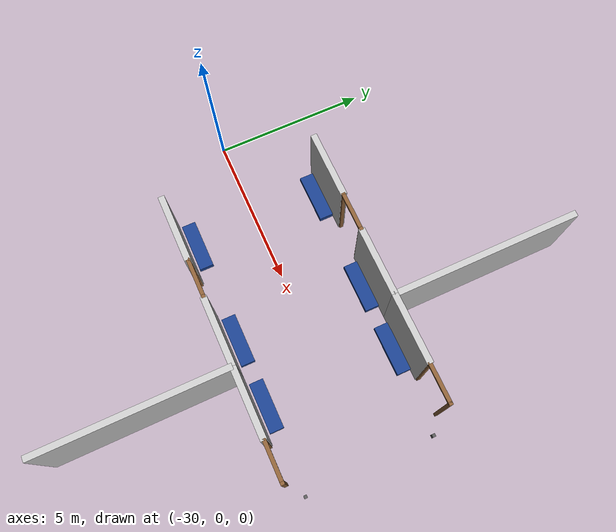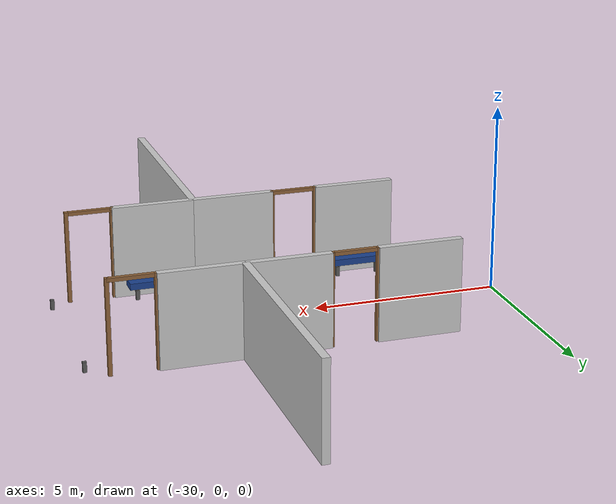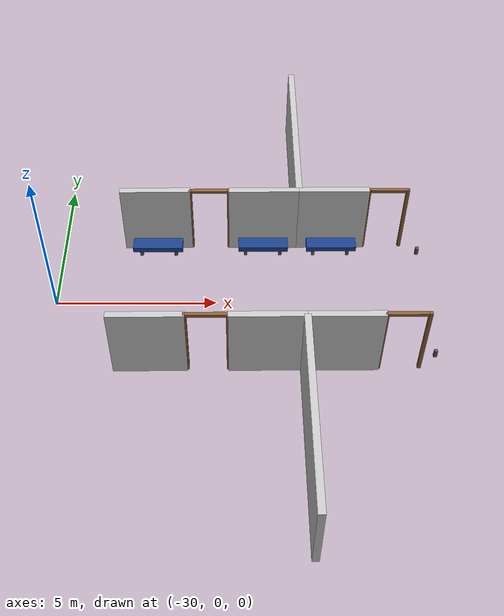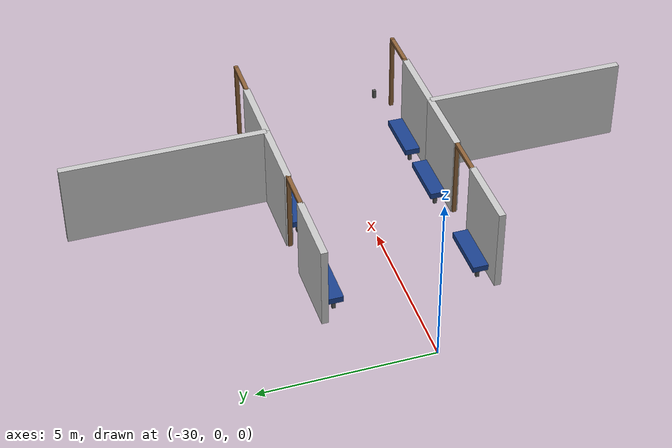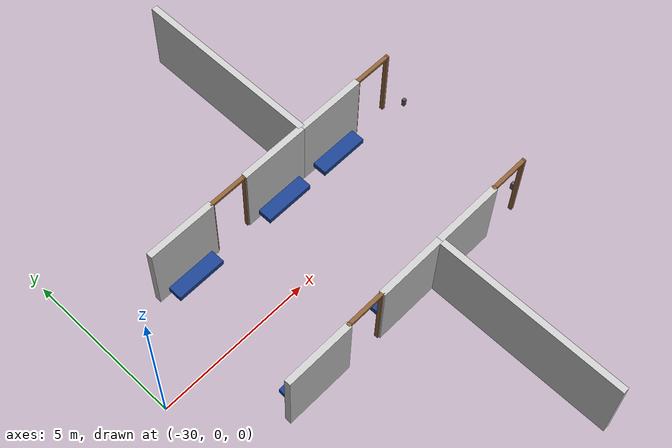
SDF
<sdf version="1.9">
 <world name="hospital_easy">
  <model name="north_partition_0">
   <static>true</static>
   <pose>-22.400 5.500 1.250 0 0 0</pose>
   <link name="link">
    <collision name="collision"><geometry><box><size>0.200 6.000 2.500</size></box></geometry></collision>
    <visual name="visual">
     <geometry><box><size>0.200 6.000 2.500</size></box></geometry>
     <material><ambient>0.78 0.78 0.78 1.0</ambient><diffuse>0.78 0.78 0.78 1.0</diffuse></material>
    </visual>
   </link>
  </model>
  <model name="south_partition_0">
   <static>true</static>
   <pose>-22.400 -5.500 1.250 0 0 0</pose>
   <link name="link">
    <collision name="collision"><geometry><box><size>0.200 6.000 2.500</size></box></geometry></collision>
    <visual name="visual">
     <geometry><box><size>0.200 6.000 2.500</size></box></geometry>
     <material><ambient>0.78 0.78 0.78 1.0</ambient><diffuse>0.78 0.78 0.78 1.0</diffuse></material>
    </visual>
   </link>
  </model>
  <model name="north_room_01_wall_left">
   <static>true</static>
   <pose>-26.900 2.500 1.250 0 0 0</pose>
   <link name="link">
    <collision name="collision"><geometry><box><size>2.200 0.200 2.500</size></box></geometry></collision>
    <visual name="visual">
     <geometry><box><size>2.200 0.200 2.500</size></box></geometry>
     <material><ambient>0.78 0.78 0.78 1.0</ambient><diffuse>0.78 0.78 0.78 1.0</diffuse></material>
    </visual>
   </link>
  </model>
  <model name="north_room_01_wall_right">
   <static>true</static>
   <pose>-23.500 2.500 1.250 0 0 0</pose>
   <link name="link">
    <collision name="collision"><geometry><box><size>2.200 0.200 2.500</size></box></geometry></collision>
    <visual name="visual">
     <geometry><box><size>2.200 0.200 2.500</size></box></geometry>
     <material><ambient>0.78 0.78 0.78 1.0</ambient><diffuse>0.78 0.78 0.78 1.0</diffuse></material>
    </visual>
   </link>
  </model>
  <model name="north_room_02_wall_left">
   <static>true</static>
   <pose>-21.300 2.500 1.250 0 0 0</pose>
   <link name="link">
    <collision name="collision"><geometry><box><size>2.200 0.200 2.500</size></box></geometry></collision>
    <visual name="visual">
     <geometry><box><size>2.200 0.200 2.500</size></box></geometry>
     <material><ambient>0.78 0.78 0.78 1.0</ambient><diffuse>0.78 0.78 0.78 1.0</diffuse></material>
    </visual>
   </link>
  </model>
  <model name="south_room_01_wall_left">
   <static>true</static>
   <pose>-26.900 -2.500 1.250 0 0 0</pose>
   <link name="link">
    <collision name="collision"><geometry><box><size>2.200 0.200 2.500</size></box></geometry></collision>
    <visual name="visual">
     <geometry><box><size>2.200 0.200 2.500</size></box></geometry>
     <material><ambient>0.78 0.78 0.78 1.0</ambient><diffuse>0.78 0.78 0.78 1.0</diffuse></material>
    </visual>
   </link>
  </model>
  <model name="south_room_01_wall_right">
   <static>true</static>
   <pose>-23.500 -2.500 1.250 0 0 0</pose>
   <link name="link">
    <collision name="collision"><geometry><box><size>2.200 0.200 2.500</size></box></geometry></collision>
    <visual name="visual">
     <geometry><box><size>2.200 0.200 2.500</size></box></geometry>
     <material><ambient>0.78 0.78 0.78 1.0</ambient><diffuse>0.78 0.78 0.78 1.0</diffuse></material>
    </visual>
   </link>
  </model>
  <model name="south_room_02_wall_left">
   <static>true</static>
   <pose>-21.300 -2.500 1.250 0 0 0</pose>
   <link name="link">
    <collision name="collision"><geometry><box><size>2.200 0.200 2.500</size></box></geometry></collision>
    <visual name="visual">
     <geometry><box><size>2.200 0.200 2.500</size></box></geometry>
     <material><ambient>0.78 0.78 0.78 1.0</ambient><diffuse>0.78 0.78 0.78 1.0</diffuse></material>
    </visual>
   </link>
  </model>
  <model name="north_door_01_left">
   <static>true</static>
   <pose>-25.800 2.490 1.250 0 0 0</pose>
   <link name="link">
    <collision name="collision"><geometry><box><size>0.100 0.120 2.500</size></box></geometry></collision>
    <visual name="visual">
     <geometry><box><size>0.100 0.120 2.500</size></box></geometry>
     <material><ambient>0.55 0.38 0.22 1.0</ambient><diffuse>0.55 0.38 0.22 1.0</diffuse></material>
    </visual>
   </link>
  </model>
  <model name="north_door_01_right">
   <static>true</static>
   <pose>-24.600 2.490 1.250 0 0 0</pose>
   <link name="link">
    <collision name="collision"><geometry><box><size>0.100 0.120 2.500</size></box></geometry></collision>
    <visual name="visual">
     <geometry><box><size>0.100 0.120 2.500</size></box></geometry>
     <material><ambient>0.55 0.38 0.22 1.0</ambient><diffuse>0.55 0.38 0.22 1.0</diffuse></material>
    </visual>
   </link>
  </model>
  <model name="north_door_01_top">
   <static>true</static>
   <pose>-25.200 2.490 2.450 0 0 0</pose>
   <link name="link">
    <collision name="collision"><geometry><box><size>1.200 0.120 0.100</size></box></geometry></collision>
    <visual name="visual">
     <geometry><box><size>1.200 0.120 0.100</size></box></geometry>
     <material><ambient>0.55 0.38 0.22 1.0</ambient><diffuse>0.55 0.38 0.22 1.0</diffuse></material>
    </visual>
   </link>
  </model>
  <model name="north_door_02_left">
   <static>true</static>
   <pose>-20.200 2.490 1.250 0 0 0</pose>
   <link name="link">
    <collision name="collision"><geometry><box><size>0.100 0.120 2.500</size></box></geometry></collision>
    <visual name="visual">
     <geometry><box><size>0.100 0.120 2.500</size></box></geometry>
     <material><ambient>0.55 0.38 0.22 1.0</ambient><diffuse>0.55 0.38 0.22 1.0</diffuse></material>
    </visual>
   </link>
  </model>
  <model name="north_door_02_right">
   <static>true</static>
   <pose>-19.000 2.490 1.250 0 0 0</pose>
   <link name="link">
    <collision name="collision"><geometry><box><size>0.100 0.120 2.500</size></box></geometry></collision>
    <visual name="visual">
     <geometry><box><size>0.100 0.120 2.500</size></box></geometry>
     <material><ambient>0.55 0.38 0.22 1.0</ambient><diffuse>0.55 0.38 0.22 1.0</diffuse></material>
    </visual>
   </link>
  </model>
  <model name="north_door_02_top">
   <static>true</static>
   <pose>-19.600 2.490 2.450 0 0 0</pose>
   <link name="link">
    <collision name="collision"><geometry><box><size>1.200 0.120 0.100</size></box></geometry></collision>
    <visual name="visual">
     <geometry><box><size>1.200 0.120 0.100</size></box></geometry>
     <material><ambient>0.55 0.38 0.22 1.0</ambient><diffuse>0.55 0.38 0.22 1.0</diffuse></material>
    </visual>
   </link>
  </model>
  <model name="south_door_01_left">
   <static>true</static>
   <pose>-25.800 -2.490 1.250 0 0 0</pose>
   <link name="link">
    <collision name="collision"><geometry><box><size>0.100 0.120 2.500</size></box></geometry></collision>
    <visual name="visual">
     <geometry><box><size>0.100 0.120 2.500</size></box></geometry>
     <material><ambient>0.55 0.38 0.22 1.0</ambient><diffuse>0.55 0.38 0.22 1.0</diffuse></material>
    </visual>
   </link>
  </model>
  <model name="south_door_01_right">
   <static>true</static>
   <pose>-24.600 -2.490 1.250 0 0 0</pose>
   <link name="link">
    <collision name="collision"><geometry><box><size>0.100 0.120 2.500</size></box></geometry></collision>
    <visual name="visual">
     <geometry><box><size>0.100 0.120 2.500</size></box></geometry>
     <material><ambient>0.55 0.38 0.22 1.0</ambient><diffuse>0.55 0.38 0.22 1.0</diffuse></material>
    </visual>
   </link>
  </model>
  <model name="south_door_01_top">
   <static>true</static>
   <pose>-25.200 -2.490 2.450 0 0 0</pose>
   <link name="link">
    <collision name="collision"><geometry><box><size>1.200 0.120 0.100</size></box></geometry></collision>
    <visual name="visual">
     <geometry><box><size>1.200 0.120 0.100</size></box></geometry>
     <material><ambient>0.55 0.38 0.22 1.0</ambient><diffuse>0.55 0.38 0.22 1.0</diffuse></material>
    </visual>
   </link>
  </model>
  <model name="south_door_02_left">
   <static>true</static>
   <pose>-20.200 -2.490 1.250 0 0 0</pose>
   <link name="link">
    <collision name="collision"><geometry><box><size>0.100 0.120 2.500</size></box></geometry></collision>
    <visual name="visual">
     <geometry><box><size>0.100 0.120 2.500</size></box></geometry>
     <material><ambient>0.55 0.38 0.22 1.0</ambient><diffuse>0.55 0.38 0.22 1.0</diffuse></material>
    </visual>
   </link>
  </model>
  <model name="south_door_02_right">
   <static>true</static>
   <pose>-19.000 -2.490 1.250 0 0 0</pose>
   <link name="link">
    <collision name="collision"><geometry><box><size>0.100 0.120 2.500</size></box></geometry></collision>
    <visual name="visual">
     <geometry><box><size>0.100 0.120 2.500</size></box></geometry>
     <material><ambient>0.55 0.38 0.22 1.0</ambient><diffuse>0.55 0.38 0.22 1.0</diffuse></material>
    </visual>
   </link>
  </model>
  <model name="south_door_02_top">
   <static>true</static>
   <pose>-19.600 -2.490 2.450 0 0 0</pose>
   <link name="link">
    <collision name="collision"><geometry><box><size>1.200 0.120 0.100</size></box></geometry></collision>
    <visual name="visual">
     <geometry><box><size>1.200 0.120 0.100</size></box></geometry>
     <material><ambient>0.55 0.38 0.22 1.0</ambient><diffuse>0.55 0.38 0.22 1.0</diffuse></material>
    </visual>
   </link>
  </model>
  <model name="north_room_01_bench_left_seat">
   <static>true</static>
   <pose>-26.900 2.100 0.450 0 0 0</pose>
   <link name="link">
    <collision name="collision"><geometry><box><size>1.600 0.450 0.180</size></box></geometry></collision>
    <visual name="visual">
     <geometry><box><size>1.600 0.450 0.180</size></box></geometry>
     <material><ambient>0.10 0.25 0.55 1.0</ambient><diffuse>0.10 0.25 0.55 1.0</diffuse></material>
    </visual>
   </link>
  </model>
  <model name="north_room_01_bench_left_leg_left">
   <static>true</static>
   <pose>-27.460 2.100 0.135 0 0 0</pose>
   <link name="link">
    <collision name="collision"><geometry><box><size>0.100 0.100 0.270</size></box></geometry></collision>
    <visual name="visual">
     <geometry><box><size>0.100 0.100 0.270</size></box></geometry>
     <material><ambient>0.35 0.35 0.35 1.0</ambient><diffuse>0.35 0.35 0.35 1.0</diffuse></material>
    </visual>
   </link>
  </model>
  <model name="north_room_01_bench_left_leg_right">
   <static>true</static>
   <pose>-26.340 2.100 0.135 0 0 0</pose>
   <link name="link">
    <collision name="collision"><geometry><box><size>0.100 0.100 0.270</size></box></geometry></collision>
    <visual name="visual">
     <geometry><box><size>0.100 0.100 0.270</size></box></geometry>
     <material><ambient>0.35 0.35 0.35 1.0</ambient><diffuse>0.35 0.35 0.35 1.0</diffuse></material>
    </visual>
   </link>
  </model>
  <model name="north_room_01_bench_right_seat">
   <static>true</static>
   <pose>-23.500 2.100 0.450 0 0 0</pose>
   <link name="link">
    <collision name="collision"><geometry><box><size>1.600 0.450 0.180</size></box></geometry></collision>
    <visual name="visual">
     <geometry><box><size>1.600 0.450 0.180</size></box></geometry>
     <material><ambient>0.10 0.25 0.55 1.0</ambient><diffuse>0.10 0.25 0.55 1.0</diffuse></material>
    </visual>
   </link>
  </model>
  <model name="north_room_01_bench_right_leg_left">
   <static>true</static>
   <pose>-24.060 2.100 0.135 0 0 0</pose>
   <link name="link">
    <collision name="collision"><geometry><box><size>0.100 0.100 0.270</size></box></geometry></collision>
    <visual name="visual">
     <geometry><box><size>0.100 0.100 0.270</size></box></geometry>
     <material><ambient>0.35 0.35 0.35 1.0</ambient><diffuse>0.35 0.35 0.35 1.0</diffuse></material>
    </visual>
   </link>
  </model>
  <model name="north_room_01_bench_right_leg_right">
   <static>true</static>
   <pose>-22.940 2.100 0.135 0 0 0</pose>
   <link name="link">
    <collision name="collision"><geometry><box><size>0.100 0.100 0.270</size></box></geometry></collision>
    <visual name="visual">
     <geometry><box><size>0.100 0.100 0.270</size></box></geometry>
     <material><ambient>0.35 0.35 0.35 1.0</ambient><diffuse>0.35 0.35 0.35 1.0</diffuse></material>
    </visual>
   </link>
  </model>
  <model name="north_room_02_bench_left_seat">
   <static>true</static>
   <pose>-21.300 2.100 0.450 0 0 0</pose>
   <link name="link">
    <collision name="collision"><geometry><box><size>1.600 0.450 0.180</size></box></geometry></collision>
    <visual name="visual">
     <geometry><box><size>1.600 0.450 0.180</size></box></geometry>
     <material><ambient>0.10 0.25 0.55 1.0</ambient><diffuse>0.10 0.25 0.55 1.0</diffuse></material>
    </visual>
   </link>
  </model>
  <model name="north_room_02_bench_left_leg_left">
   <static>true</static>
   <pose>-21.860 2.100 0.135 0 0 0</pose>
   <link name="link">
    <collision name="collision"><geometry><box><size>0.100 0.100 0.270</size></box></geometry></collision>
    <visual name="visual">
     <geometry><box><size>0.100 0.100 0.270</size></box></geometry>
     <material><ambient>0.35 0.35 0.35 1.0</ambient><diffuse>0.35 0.35 0.35 1.0</diffuse></material>
    </visual>
   </link>
  </model>
  <model name="north_room_02_bench_left_leg_right">
   <static>true</static>
   <pose>-20.740 2.100 0.135 0 0 0</pose>
   <link name="link">
    <collision name="collision"><geometry><box><size>0.100 0.100 0.270</size></box></geometry></collision>
    <visual name="visual">
     <geometry><box><size>0.100 0.100 0.270</size></box></geometry>
     <material><ambient>0.35 0.35 0.35 1.0</ambient><diffuse>0.35 0.35 0.35 1.0</diffuse></material>
    </visual>
   </link>
  </model>
  <model name="north_room_02_bench_right_leg_left">
   <static>true</static>
   <pose>-18.460 2.100 0.135 0 0 0</pose>
   <link name="link">
    <collision name="collision"><geometry><box><size>0.100 0.100 0.270</size></box></geometry></collision>
    <visual name="visual">
     <geometry><box><size>0.100 0.100 0.270</size></box></geometry>
     <material><ambient>0.35 0.35 0.35 1.0</ambient><diffuse>0.35 0.35 0.35 1.0</diffuse></material>
    </visual>
   </link>
  </model>
  <model name="south_room_01_bench_left_seat">
   <static>true</static>
   <pose>-26.900 -2.100 0.450 0 0 0</pose>
   <link name="link">
    <collision name="collision"><geometry><box><size>1.600 0.450 0.180</size></box></geometry></collision>
    <visual name="visual">
     <geometry><box><size>1.600 0.450 0.180</size></box></geometry>
     <material><ambient>0.10 0.25 0.55 1.0</ambient><diffuse>0.10 0.25 0.55 1.0</diffuse></material>
    </visual>
   </link>
  </model>
  <model name="south_room_01_bench_left_leg_left">
   <static>true</static>
   <pose>-27.460 -2.100 0.135 0 0 0</pose>
   <link name="link">
    <collision name="collision"><geometry><box><size>0.100 0.100 0.270</size></box></geometry></collision>
    <visual name="visual">
     <geometry><box><size>0.100 0.100 0.270</size></box></geometry>
     <material><ambient>0.35 0.35 0.35 1.0</ambient><diffuse>0.35 0.35 0.35 1.0</diffuse></material>
    </visual>
   </link>
  </model>
  <model name="south_room_01_bench_left_leg_right">
   <static>true</static>
   <pose>-26.340 -2.100 0.135 0 0 0</pose>
   <link name="link">
    <collision name="collision"><geometry><box><size>0.100 0.100 0.270</size></box></geometry></collision>
    <visual name="visual">
     <geometry><box><size>0.100 0.100 0.270</size></box></geometry>
     <material><ambient>0.35 0.35 0.35 1.0</ambient><diffuse>0.35 0.35 0.35 1.0</diffuse></material>
    </visual>
   </link>
  </model>
  <model name="south_room_01_bench_right_seat">
   <static>true</static>
   <pose>-23.500 -2.100 0.450 0 0 0</pose>
   <link name="link">
    <collision name="collision"><geometry><box><size>1.600 0.450 0.180</size></box></geometry></collision>
    <visual name="visual">
     <geometry><box><size>1.600 0.450 0.180</size></box></geometry>
     <material><ambient>0.10 0.25 0.55 1.0</ambient><diffuse>0.10 0.25 0.55 1.0</diffuse></material>
    </visual>
   </link>
  </model>
  <model name="south_room_01_bench_right_leg_left">
   <static>true</static>
   <pose>-24.060 -2.100 0.135 0 0 0</pose>
   <link name="link">
    <collision name="collision"><geometry><box><size>0.100 0.100 0.270</size></box></geometry></collision>
    <visual name="visual">
     <geometry><box><size>0.100 0.100 0.270</size></box></geometry>
     <material><ambient>0.35 0.35 0.35 1.0</ambient><diffuse>0.35 0.35 0.35 1.0</diffuse></material>
    </visual>
   </link>
  </model>
  <model name="south_room_01_bench_right_leg_right">
   <static>true</static>
   <pose>-22.940 -2.100 0.135 0 0 0</pose>
   <link name="link">
    <collision name="collision"><geometry><box><size>0.100 0.100 0.270</size></box></geometry></collision>
    <visual name="visual">
     <geometry><box><size>0.100 0.100 0.270</size></box></geometry>
     <material><ambient>0.35 0.35 0.35 1.0</ambient><diffuse>0.35 0.35 0.35 1.0</diffuse></material>
    </visual>
   </link>
  </model>
  <model name="south_room_02_bench_left_seat">
   <static>true</static>
   <pose>-21.300 -2.100 0.450 0 0 0</pose>
   <link name="link">
    <collision name="collision"><geometry><box><size>1.600 0.450 0.180</size></box></geometry></collision>
    <visual name="visual">
     <geometry><box><size>1.600 0.450 0.180</size></box></geometry>
     <material><ambient>0.10 0.25 0.55 1.0</ambient><diffuse>0.10 0.25 0.55 1.0</diffuse></material>
    </visual>
   </link>
  </model>
  <model name="south_room_02_bench_left_leg_left">
   <static>true</static>
   <pose>-21.860 -2.100 0.135 0 0 0</pose>
   <link name="link">
    <collision name="collision"><geometry><box><size>0.100 0.100 0.270</size></box></geometry></collision>
    <visual name="visual">
     <geometry><box><size>0.100 0.100 0.270</size></box></geometry>
     <material><ambient>0.35 0.35 0.35 1.0</ambient><diffuse>0.35 0.35 0.35 1.0</diffuse></material>
    </visual>
   </link>
  </model>
  <model name="south_room_02_bench_left_leg_right">
   <static>true</static>
   <pose>-20.740 -2.100 0.135 0 0 0</pose>
   <link name="link">
    <collision name="collision"><geometry><box><size>0.100 0.100 0.270</size></box></geometry></collision>
    <visual name="visual">
     <geometry><box><size>0.100 0.100 0.270</size></box></geometry>
     <material><ambient>0.35 0.35 0.35 1.0</ambient><diffuse>0.35 0.35 0.35 1.0</diffuse></material>
    </visual>
   </link>
  </model>
  <model name="south_room_02_bench_right_leg_left">
   <static>true</static>
   <pose>-18.460 -2.100 0.135 0 0 0</pose>
   <link name="link">
    <collision name="collision"><geometry><box><size>0.100 0.100 0.270</size></box></geometry></collision>
    <visual name="visual">
     <geometry><box><size>0.100 0.100 0.270</size></box></geometry>
     <material><ambient>0.35 0.35 0.35 1.0</ambient><diffuse>0.35 0.35 0.35 1.0</diffuse></material>
    </visual>
   </link>
  </model>
  <model name="hospital_walking_human_3_proxy">
   <pose>-21.300 -2.100 0.850 0 0 0.00000</pose>
   <link name="link">
    <gravity>false</gravity>
    <kinematic>true</kinematic>
    <collision name="collision">
     <geometry><cylinder><radius>0.28</radius><length>1.70</length></cylinder></geometry>
    </collision>
    <visual name="proxy_visual">
     <geometry><cylinder><radius>0.28</radius><length>1.70</length></cylinder></geometry>
     <transparency>1.0</transparency>
    </visual>
   </link>
  </model>
 </world>
</sdf>
